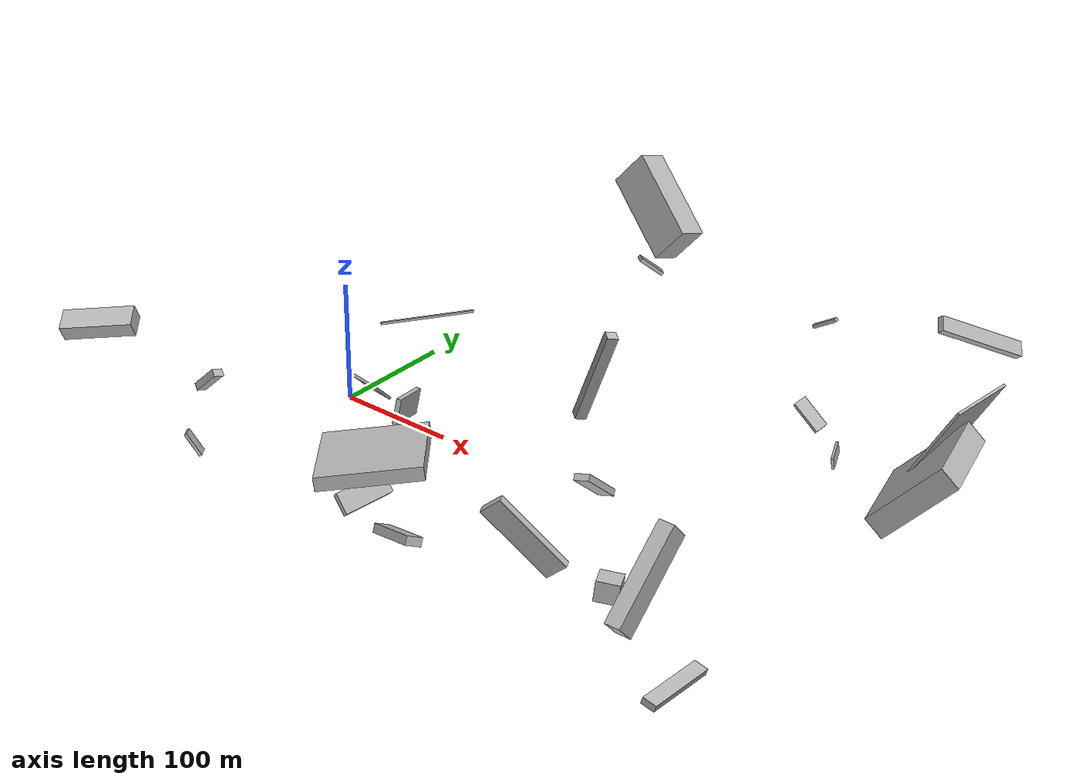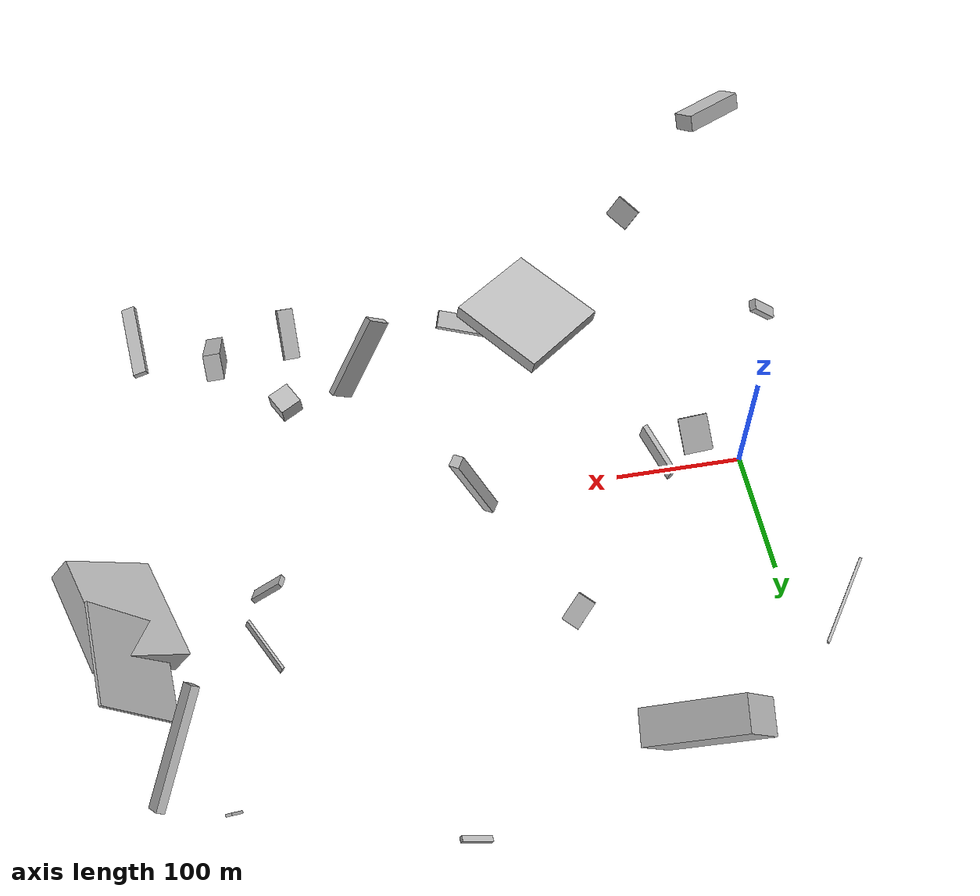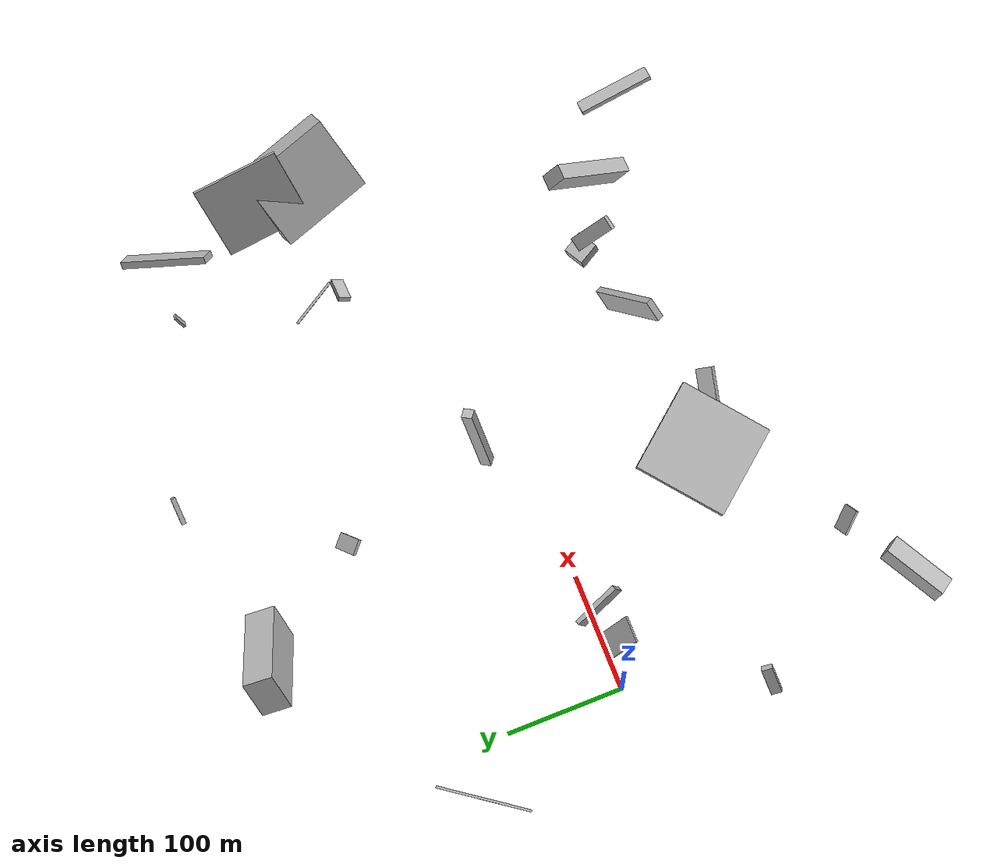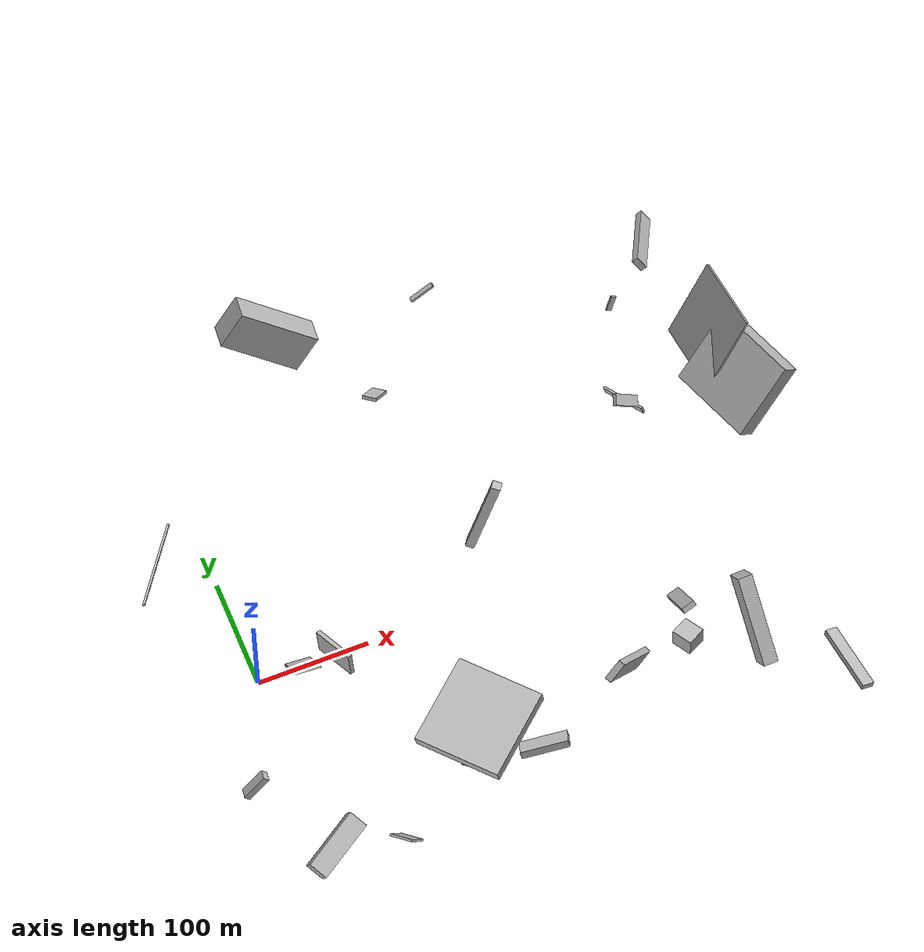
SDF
<sdf version="1.6">
 <world name="default">
  <scene>
   <sky><clouds><speed>12</speed></clouds></sky>
   <ambient>0.4 0.4 0.4 1</ambient>
   <background>0.7 0.7 0.7 1</background>
   <shadows>1</shadows>
  </scene>
  <gravity>0 0 -9.8066</gravity>
  <magnetic_field>6e-06 2.3e-05 -4.2e-05</magnetic_field>
  <physics default="0" name="default_physics" type="ode">
   <ode>
    <solver>
     <type>quick</type>
     <iters>10</iters>
     <sor>1.0</sor>
     <use_dynamic_moi_rescaling>0</use_dynamic_moi_rescaling>
    </solver>
    <constraints>
     <cfm>0</cfm>
     <erp>0.2</erp>
     <contact_max_correcting_vel>100</contact_max_correcting_vel>
     <contact_surface_layer>0.001</contact_surface_layer>
    </constraints>
   </ode>
   <max_step_size>0.004</max_step_size>
   <real_time_factor>1</real_time_factor>
   <real_time_update_rate>250</real_time_update_rate>
  </physics>
  <light name="sun" type="directional">
   <pose>0 0 10 0 0 0</pose>
   <diffuse>0.8 0.8 0.8 1</diffuse>
   <specular>0.2 0.2 0.2 1</specular>
   <attenuation>
    <range>1000</range>
    <constant>0.9</constant>
    <linear>0.01</linear>
    <quadratic>0.001</quadratic>
   </attenuation>
   <direction>-0.5 0.1 -0.9</direction>
  </light>
  <model name="building_1">
   <static>0</static>
   <pose>-65.39528368613013 105.03002122241449 2.7890535226329933 -1.292695381544931 1.4922723793638222 -0.3459012428984222</pose>
   <link name="link">
    <gravity>0</gravity>
    <pose>0 0 40.0 0 0 0</pose>
    <collision name="collision"><geometry><box><size>2 2 80</size></box></geometry></collision>
    <visual name="visual">
     <cast_shadows>0</cast_shadows>
     <geometry><box><size>2 2 80</size></box></geometry>
     <material>
      <script>
       <uri>model://HANNAS_wall/materials/scripts</uri>
       <uri>model://HANNAS_wall/materials/textures</uri>
       <name>vrc/HANNAS_wall</name>
      </script>
     </material>
    </visual>
   </link>
  </model>
  <model name="building_2">
   <static>0</static>
   <pose>456.6392180352752 83.06137195027289 40.373447085479526 -0.07673785856519184 0.7894572248476924 0.2678979902386211</pose>
   <link name="link">
    <gravity>0</gravity>
    <pose>0 0 36.0 0 0 0</pose>
    <collision name="collision"><geometry><box><size>19 80 72</size></box></geometry></collision>
    <visual name="visual">
     <cast_shadows>0</cast_shadows>
     <geometry><box><size>19 80 72</size></box></geometry>
     <material>
      <script>
       <uri>model://HANNAS_wall/materials/scripts</uri>
       <uri>model://HANNAS_wall/materials/textures</uri>
       <name>vrc/HANNAS_wall</name>
      </script>
     </material>
    </visual>
   </link>
  </model>
  <model name="building_3">
   <static>0</static>
   <pose>47.93813850766837 -12.546415302152102 26.293286712184425 1.3888759408693647 -0.7699520303251247 -1.451160809689693</pose>
   <link name="link">
    <gravity>0</gravity>
    <pose>0 0 11.5 0 0 0</pose>
    <collision name="collision"><geometry><box><size>29 2 23</size></box></geometry></collision>
    <visual name="visual">
     <cast_shadows>0</cast_shadows>
     <geometry><box><size>29 2 23</size></box></geometry>
     <material>
      <script>
       <uri>model://HANNAS_wall/materials/scripts</uri>
       <uri>model://HANNAS_wall/materials/textures</uri>
       <name>vrc/HANNAS_wall</name>
      </script>
     </material>
    </visual>
   </link>
  </model>
  <model name="building_4">
   <static>0</static>
   <pose>208.64774683723277 35.26131044034561 43.70102094766168 0.24954435329571004 -0.23624875984410115 2.5128643693963864</pose>
   <link name="link">
    <gravity>0</gravity>
    <pose>0 0 40.0 0 0 0</pose>
    <collision name="collision"><geometry><box><size>8 9 80</size></box></geometry></collision>
    <visual name="visual">
     <cast_shadows>0</cast_shadows>
     <geometry><box><size>8 9 80</size></box></geometry>
     <material>
      <script>
       <uri>model://HANNAS_wall/materials/scripts</uri>
       <uri>model://HANNAS_wall/materials/textures</uri>
       <name>vrc/HANNAS_wall</name>
      </script>
     </material>
    </visual>
   </link>
  </model>
  <model name="building_5">
   <static>0</static>
   <pose>470.0893328100939 -212.0399309730742 33.24877530748948 1.9921915962364887 1.2739537312449705 -2.6427748652724596</pose>
   <link name="link">
    <gravity>0</gravity>
    <pose>0 0 32.0 0 0 0</pose>
    <collision name="collision"><geometry><box><size>5 11 64</size></box></geometry></collision>
    <visual name="visual">
     <cast_shadows>0</cast_shadows>
     <geometry><box><size>5 11 64</size></box></geometry>
     <material>
      <script>
       <uri>model://HANNAS_wall/materials/scripts</uri>
       <uri>model://HANNAS_wall/materials/textures</uri>
       <name>vrc/HANNAS_wall</name>
      </script>
     </material>
    </visual>
   </link>
  </model>
  <model name="building_6">
   <static>0</static>
   <pose>200.39255395443845 -150.299196537988 22.05191172351634 -1.139427508059886 0.22581536527094406 2.927130137034746</pose>
   <link name="link">
    <gravity>0</gravity>
    <pose>0 0 7.0 0 0 0</pose>
    <collision name="collision"><geometry><box><size>42 7 14</size></box></geometry></collision>
    <visual name="visual">
     <cast_shadows>0</cast_shadows>
     <geometry><box><size>42 7 14</size></box></geometry>
     <material>
      <script>
       <uri>model://HANNAS_wall/materials/scripts</uri>
       <uri>model://HANNAS_wall/materials/textures</uri>
       <name>vrc/HANNAS_wall</name>
      </script>
     </material>
    </visual>
   </link>
  </model>
  <model name="building_7">
   <static>0</static>
   <pose>407.2867821713103 -128.21411423597584 58.32180234680871 1.5475877713474941 -0.8363994226421297 -1.5209687734163226</pose>
   <link name="link">
    <gravity>0</gravity>
    <pose>0 0 6.5 0 0 0</pose>
    <collision name="collision"><geometry><box><size>20 80 13</size></box></geometry></collision>
    <visual name="visual">
     <cast_shadows>0</cast_shadows>
     <geometry><box><size>20 80 13</size></box></geometry>
     <material>
      <script>
       <uri>model://HANNAS_wall/materials/scripts</uri>
       <uri>model://HANNAS_wall/materials/textures</uri>
       <name>vrc/HANNAS_wall</name>
      </script>
     </material>
    </visual>
   </link>
  </model>
  <model name="building_8">
   <static>0</static>
   <pose>57.636666829623564 -211.3308661903221 64.37620280268236 0.5863165150920304 -0.32500486810388285 -0.8287888106604995</pose>
   <link name="link">
    <gravity>0</gravity>
    <pose>0 0 9.5 0 0 0</pose>
    <collision name="collision"><geometry><box><size>21 2 19</size></box></geometry></collision>
    <visual name="visual">
     <cast_shadows>0</cast_shadows>
     <geometry><box><size>21 2 19</size></box></geometry>
     <material>
      <script>
       <uri>model://HANNAS_wall/materials/scripts</uri>
       <uri>model://HANNAS_wall/materials/textures</uri>
       <name>vrc/HANNAS_wall</name>
      </script>
     </material>
    </visual>
   </link>
  </model>
  <model name="building_9">
   <static>0</static>
   <pose>66.05058923093002 -7.22391696696976 19.216467502760473 -1.683259551047388 -0.26510604334594823 -1.2027813156785825</pose>
   <link name="link">
    <gravity>0</gravity>
    <pose>0 0 2.0 0 0 0</pose>
    <collision name="collision"><geometry><box><size>42 21 4</size></box></geometry></collision>
    <visual name="visual">
     <cast_shadows>0</cast_shadows>
     <geometry><box><size>42 21 4</size></box></geometry>
     <material>
      <script>
       <uri>model://HANNAS_wall/materials/scripts</uri>
       <uri>model://HANNAS_wall/materials/textures</uri>
       <name>vrc/HANNAS_wall</name>
      </script>
     </material>
    </visual>
   </link>
  </model>
  <model name="building_10">
   <static>0</static>
   <pose>139.86959337212895 247.16798450934448 86.77761010966464 -0.4626060961391761 -0.8594758965514753 0.24687428976585532</pose>
   <link name="link">
    <gravity>0</gravity>
    <pose>0 0 39.0 0 0 0</pose>
    <collision name="collision"><geometry><box><size>36 25 78</size></box></geometry></collision>
    <visual name="visual">
     <cast_shadows>0</cast_shadows>
     <geometry><box><size>36 25 78</size></box></geometry>
     <material>
      <script>
       <uri>model://HANNAS_wall/materials/scripts</uri>
       <uri>model://HANNAS_wall/materials/textures</uri>
       <name>vrc/HANNAS_wall</name>
      </script>
     </material>
    </visual>
   </link>
  </model>
  <model name="building_11">
   <static>0</static>
   <pose>445.2496005190038 215.36095512318875 112.2700142660476 -0.6222088206085787 -0.659729625585595 -0.044235047788291015</pose>
   <link name="link">
    <gravity>0</gravity>
    <pose>0 0 6.0 0 0 0</pose>
    <collision name="collision"><geometry><box><size>6 80 12</size></box></geometry></collision>
    <visual name="visual">
     <cast_shadows>0</cast_shadows>
     <geometry><box><size>6 80 12</size></box></geometry>
     <material>
      <script>
       <uri>model://HANNAS_wall/materials/scripts</uri>
       <uri>model://HANNAS_wall/materials/textures</uri>
       <name>vrc/HANNAS_wall</name>
      </script>
     </material>
    </visual>
   </link>
  </model>
  <model name="building_12">
   <static>0</static>
   <pose>180.6225193451114 -103.93274708812389 64.62120586778943 1.6890097726242803 -0.09840489226094253 -0.8846878791751177</pose>
   <link name="link">
    <gravity>0</gravity>
    <pose>0 0 40.0 0 0 0</pose>
    <collision name="collision"><geometry><box><size>79 11 80</size></box></geometry></collision>
    <visual name="visual">
     <cast_shadows>0</cast_shadows>
     <geometry><box><size>79 11 80</size></box></geometry>
     <material>
      <script>
       <uri>model://HANNAS_wall/materials/scripts</uri>
       <uri>model://HANNAS_wall/materials/textures</uri>
       <name>vrc/HANNAS_wall</name>
      </script>
     </material>
    </visual>
   </link>
  </model>
  <model name="building_13">
   <static>0</static>
   <pose>387.2533037936082 96.56200760867154 71.19378397511947 0.5198614353367932 -0.7799340105051021 -0.6820686800873492</pose>
   <link name="link">
    <gravity>0</gravity>
    <pose>0 0 13.0 0 0 0</pose>
    <collision name="collision"><geometry><box><size>4 10 26</size></box></geometry></collision>
    <visual name="visual">
     <cast_shadows>0</cast_shadows>
     <geometry><box><size>4 10 26</size></box></geometry>
     <material>
      <script>
       <uri>model://HANNAS_wall/materials/scripts</uri>
       <uri>model://HANNAS_wall/materials/textures</uri>
       <name>vrc/HANNAS_wall</name>
      </script>
     </material>
    </visual>
   </link>
  </model>
  <model name="building_14">
   <static>0</static>
   <pose>469.1174624389381 173.6474256371189 74.43896668655466 1.428966196153053 0.5159115008732289 0.005501613248054438</pose>
   <link name="link">
    <gravity>0</gravity>
    <pose>0 0 36.5 0 0 0</pose>
    <collision name="collision"><geometry><box><size>2 80 73</size></box></geometry></collision>
    <visual name="visual">
     <cast_shadows>0</cast_shadows>
     <geometry><box><size>2 80 73</size></box></geometry>
     <material>
      <script>
       <uri>model://HANNAS_wall/materials/scripts</uri>
       <uri>model://HANNAS_wall/materials/textures</uri>
       <name>vrc/HANNAS_wall</name>
      </script>
     </material>
    </visual>
   </link>
  </model>
  <model name="building_15">
   <static>0</static>
   <pose>139.12198126948383 -154.24977482299354 25.64076591301642 1.0970959196440164 -0.8748825625532263 3.046609273859155</pose>
   <link name="link">
    <gravity>0</gravity>
    <pose>0 0 19.0 0 0 0</pose>
    <collision name="collision"><geometry><box><size>17 23 38</size></box></geometry></collision>
    <visual name="visual">
     <cast_shadows>0</cast_shadows>
     <geometry><box><size>17 23 38</size></box></geometry>
     <material>
      <script>
       <uri>model://HANNAS_wall/materials/scripts</uri>
       <uri>model://HANNAS_wall/materials/textures</uri>
       <name>vrc/HANNAS_wall</name>
      </script>
     </material>
    </visual>
   </link>
  </model>
  <model name="building_16">
   <static>0</static>
   <pose>-42.00998649715815 -106.55617136886436 46.23358631421403 -1.2059967791269357 -0.7393051012543687 2.744993308648357</pose>
   <link name="link">
    <gravity>0</gravity>
    <pose>0 0 4.5 0 0 0</pose>
    <collision name="collision"><geometry><box><size>6 26 9</size></box></geometry></collision>
    <visual name="visual">
     <cast_shadows>0</cast_shadows>
     <geometry><box><size>6 26 9</size></box></geometry>
     <material>
      <script>
       <uri>model://HANNAS_wall/materials/scripts</uri>
       <uri>model://HANNAS_wall/materials/textures</uri>
       <name>vrc/HANNAS_wall</name>
      </script>
     </material>
    </visual>
   </link>
  </model>
  <model name="building_17">
   <static>0</static>
   <pose>340.3645523322112 -95.01425326766505 87.60613401233503 -0.8244450702701696 0.2056976932181039 -2.928200721548754</pose>
   <link name="link">
    <gravity>0</gravity>
    <pose>0 0 19.0 0 0 0</pose>
    <collision name="collision"><geometry><box><size>12 5 38</size></box></geometry></collision>
    <visual name="visual">
     <cast_shadows>0</cast_shadows>
     <geometry><box><size>12 5 38</size></box></geometry>
     <material>
      <script>
       <uri>model://HANNAS_wall/materials/scripts</uri>
       <uri>model://HANNAS_wall/materials/textures</uri>
       <name>vrc/HANNAS_wall</name>
      </script>
     </material>
    </visual>
   </link>
  </model>
  <model name="building_18">
   <static>0</static>
   <pose>7.292230576320027 -220.9639330763633 159.38981997835882 1.7278870755318505 0.4372729580861498 -0.9590624169746803</pose>
   <link name="link">
    <gravity>0</gravity>
    <pose>0 0 27.0 0 0 0</pose>
    <collision name="collision"><geometry><box><size>17 13 54</size></box></geometry></collision>
    <visual name="visual">
     <cast_shadows>0</cast_shadows>
     <geometry><box><size>17 13 54</size></box></geometry>
     <material>
      <script>
       <uri>model://HANNAS_wall/materials/scripts</uri>
       <uri>model://HANNAS_wall/materials/textures</uri>
       <name>vrc/HANNAS_wall</name>
      </script>
     </material>
    </visual>
   </link>
  </model>
  <model name="building_19">
   <static>0</static>
   <pose>387.05990195165 119.48973815381555 38.36556254871482 -1.7521567279110533 0.216363718594811 2.0745796900742337</pose>
   <link name="link">
    <gravity>0</gravity>
    <pose>0 0 1.0 0 0 0</pose>
    <collision name="collision"><geometry><box><size>43 8 2</size></box></geometry></collision>
    <visual name="visual">
     <cast_shadows>0</cast_shadows>
     <geometry><box><size>43 8 2</size></box></geometry>
     <material>
      <script>
       <uri>model://HANNAS_wall/materials/scripts</uri>
       <uri>model://HANNAS_wall/materials/textures</uri>
       <name>vrc/HANNAS_wall</name>
      </script>
     </material>
    </visual>
   </link>
  </model>
  <model name="building_20">
   <static>0</static>
   <pose>346.834035610291 -96.85348467299761 17.899060398221497 1.4637014547729763 0.1128514159588167 0.49328064971421043</pose>
   <link name="link">
    <gravity>0</gravity>
    <pose>0 0 9.5 0 0 0</pose>
    <collision name="collision"><geometry><box><size>18 16 19</size></box></geometry></collision>
    <visual name="visual">
     <cast_shadows>0</cast_shadows>
     <geometry><box><size>18 16 19</size></box></geometry>
     <material>
      <script>
       <uri>model://HANNAS_wall/materials/scripts</uri>
       <uri>model://HANNAS_wall/materials/textures</uri>
       <name>vrc/HANNAS_wall</name>
      </script>
     </material>
    </visual>
   </link>
  </model>
  <model name="building_21">
   <static>0</static>
   <pose>422.03885449598806 226.8843776687261 11.184699168216566 1.0722489914227173 -0.3831579785845219 -1.510039422845837</pose>
   <link name="link">
    <gravity>0</gravity>
    <pose>0 0 2.5 0 0 0</pose>
    <collision name="collision"><geometry><box><size>2 14 5</size></box></geometry></collision>
    <visual name="visual">
     <cast_shadows>0</cast_shadows>
     <geometry><box><size>2 14 5</size></box></geometry>
     <material>
      <script>
       <uri>model://HANNAS_wall/materials/scripts</uri>
       <uri>model://HANNAS_wall/materials/textures</uri>
       <name>vrc/HANNAS_wall</name>
      </script>
     </material>
    </visual>
   </link>
  </model>
  <model name="building_22">
   <static>0</static>
   <pose>281.1243908439964 -124.27682925174247 36.67865496489182 -0.24831703398984034 -0.8558668632373352 -2.490183680220657</pose>
   <link name="link">
    <gravity>0</gravity>
    <pose>0 0 10.0 0 0 0</pose>
    <collision name="collision"><geometry><box><size>71 6 20</size></box></geometry></collision>
    <visual name="visual">
     <cast_shadows>0</cast_shadows>
     <geometry><box><size>71 6 20</size></box></geometry>
     <material>
      <script>
       <uri>model://HANNAS_wall/materials/scripts</uri>
       <uri>model://HANNAS_wall/materials/textures</uri>
       <name>vrc/HANNAS_wall</name>
      </script>
     </material>
    </visual>
   </link>
  </model>
  <model name="building_23">
   <static>0</static>
   <pose>166.73549220740748 160.87233713629672 116.3226944241846 2.8064198540240373 -0.8974886398128408 1.0975177879440137</pose>
   <link name="link">
    <gravity>0</gravity>
    <pose>0 0 10.5 0 0 0</pose>
    <collision name="collision"><geometry><box><size>3 13 21</size></box></geometry></collision>
    <visual name="visual">
     <cast_shadows>0</cast_shadows>
     <geometry><box><size>3 13 21</size></box></geometry>
     <material>
      <script>
       <uri>model://HANNAS_wall/materials/scripts</uri>
       <uri>model://HANNAS_wall/materials/textures</uri>
       <name>vrc/HANNAS_wall</name>
      </script>
     </material>
    </visual>
   </link>
  </model>
  <model name="building_24">
   <static>0</static>
   <pose>262.85389022937585 281.5173106896294 42.130502566759766 1.5303112002523889 0.5449405442226988 -3.1037745472793445</pose>
   <link name="link">
    <gravity>0</gravity>
    <pose>0 0 2.0 0 0 0</pose>
    <collision name="collision"><geometry><box><size>24 3 4</size></box></geometry></collision>
    <visual name="visual">
     <cast_shadows>0</cast_shadows>
     <geometry><box><size>24 3 4</size></box></geometry>
     <material>
      <script>
       <uri>model://HANNAS_wall/materials/scripts</uri>
       <uri>model://HANNAS_wall/materials/textures</uri>
       <name>vrc/HANNAS_wall</name>
      </script>
     </material>
    </visual>
   </link>
  </model>
 </world>
</sdf>
